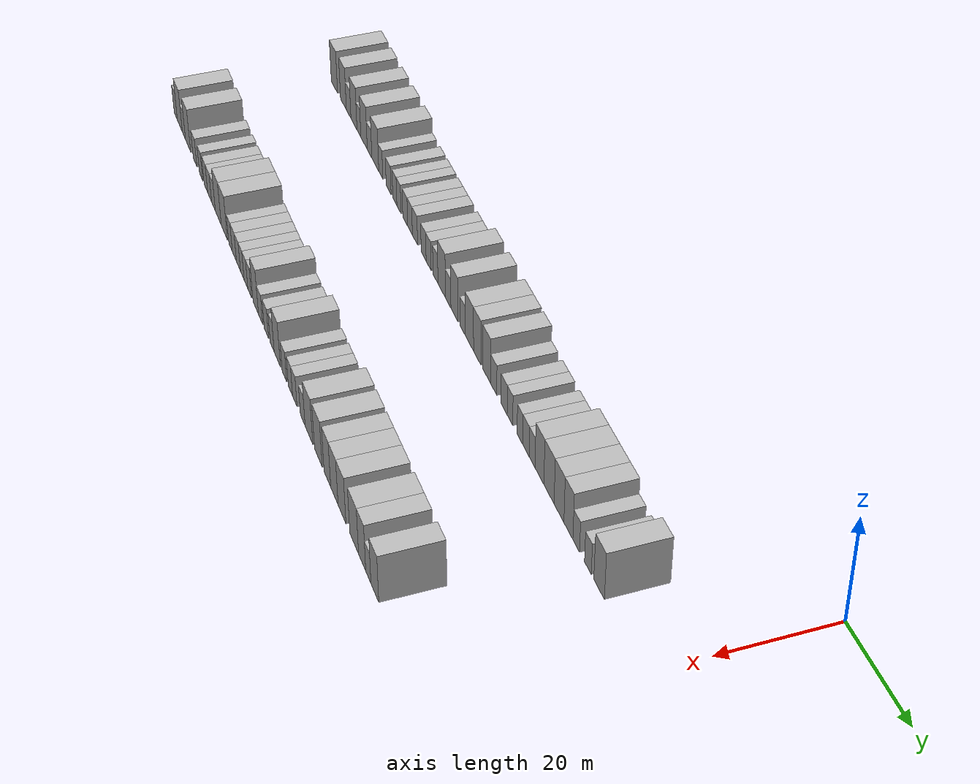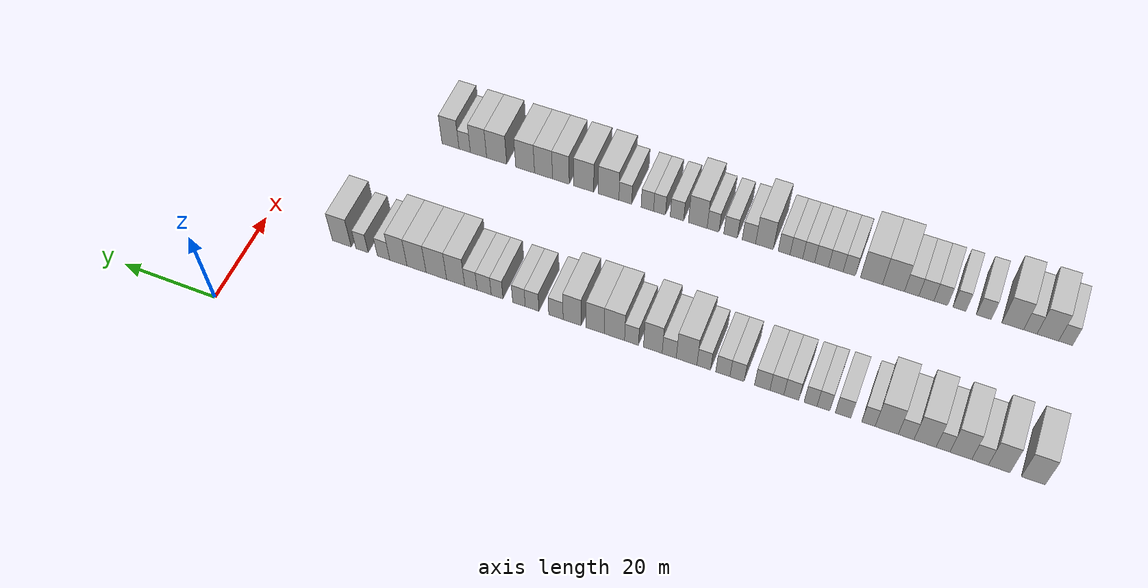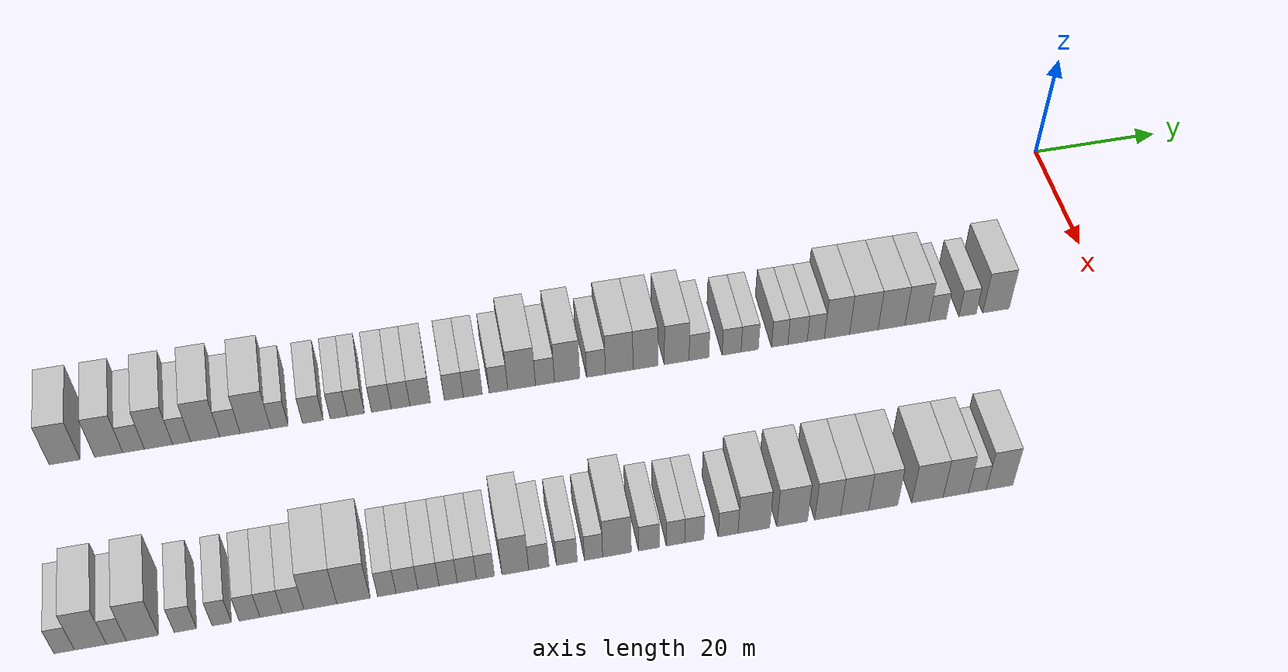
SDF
<sdf version="1.6">
 <world name="default">
  <model name="building_69">
   <static>1</static>
   <pose>25.0000 -152.9982 0 0.000000 0.000000 0.000000</pose>
   <link name="link">
    <pose>0 0 4.50 0 0 0</pose>
    <collision name="collision"><geometry><box><size>10.0000 4.2439 9.0000</size></box></geometry></collision>
    <visual name="visual">
     <cast_shadows>0</cast_shadows>
     <geometry><box><size>10.0000 4.2439 9.0000</size></box></geometry>
     <material>
      <script>
       <uri>model://HANNAS_wall/materials/scripts</uri>
       <uri>model://HANNAS_wall/materials/textures</uri>
       <name>vrc/HANNAS_wall</name>
      </script>
     </material>
    </visual>
   </link>
  </model>
  <model name="building_70">
   <static>1</static>
   <pose>25.0000 -146.9406 0 0.000000 0.000000 0.000000</pose>
   <link name="link">
    <pose>0 0 4.50 0 0 0</pose>
    <collision name="collision"><geometry><box><size>10.0000 3.8713 9.0000</size></box></geometry></collision>
    <visual name="visual">
     <cast_shadows>0</cast_shadows>
     <geometry><box><size>10.0000 3.8713 9.0000</size></box></geometry>
     <material>
      <script>
       <uri>model://HANNAS_wall/materials/scripts</uri>
       <uri>model://HANNAS_wall/materials/textures</uri>
       <name>vrc/HANNAS_wall</name>
      </script>
     </material>
    </visual>
   </link>
  </model>
  <model name="building_71">
   <static>1</static>
   <pose>25.0000 -143.5120 0 0.000000 0.000000 0.000000</pose>
   <link name="link">
    <pose>0 0 3.00 0 0 0</pose>
    <collision name="collision"><geometry><box><size>10.0000 2.9858 6.0000</size></box></geometry></collision>
    <visual name="visual">
     <cast_shadows>0</cast_shadows>
     <geometry><box><size>10.0000 2.9858 6.0000</size></box></geometry>
     <material>
      <script>
       <uri>model://HANNAS_wall/materials/scripts</uri>
       <uri>model://HANNAS_wall/materials/textures</uri>
       <name>vrc/HANNAS_wall</name>
      </script>
     </material>
    </visual>
   </link>
  </model>
  <model name="building_72">
   <static>1</static>
   <pose>25.0000 -140.0591 0 0.000000 0.000000 0.000000</pose>
   <link name="link">
    <pose>0 0 4.50 0 0 0</pose>
    <collision name="collision"><geometry><box><size>10.0000 3.9200 9.0000</size></box></geometry></collision>
    <visual name="visual">
     <cast_shadows>0</cast_shadows>
     <geometry><box><size>10.0000 3.9200 9.0000</size></box></geometry>
     <material>
      <script>
       <uri>model://HANNAS_wall/materials/scripts</uri>
       <uri>model://HANNAS_wall/materials/textures</uri>
       <name>vrc/HANNAS_wall</name>
      </script>
     </material>
    </visual>
   </link>
  </model>
  <model name="building_73">
   <static>1</static>
   <pose>25.0000 -136.8390 0 0.000000 0.000000 0.000000</pose>
   <link name="link">
    <pose>0 0 3.00 0 0 0</pose>
    <collision name="collision"><geometry><box><size>10.0000 2.5201 6.0000</size></box></geometry></collision>
    <visual name="visual">
     <cast_shadows>0</cast_shadows>
     <geometry><box><size>10.0000 2.5201 6.0000</size></box></geometry>
     <material>
      <script>
       <uri>model://HANNAS_wall/materials/scripts</uri>
       <uri>model://HANNAS_wall/materials/textures</uri>
       <name>vrc/HANNAS_wall</name>
      </script>
     </material>
    </visual>
   </link>
  </model>
  <model name="building_74">
   <static>1</static>
   <pose>25.0000 -133.5613 0 0.000000 0.000000 0.000000</pose>
   <link name="link">
    <pose>0 0 4.50 0 0 0</pose>
    <collision name="collision"><geometry><box><size>10.0000 4.0353 9.0000</size></box></geometry></collision>
    <visual name="visual">
     <cast_shadows>0</cast_shadows>
     <geometry><box><size>10.0000 4.0353 9.0000</size></box></geometry>
     <material>
      <script>
       <uri>model://HANNAS_wall/materials/scripts</uri>
       <uri>model://HANNAS_wall/materials/textures</uri>
       <name>vrc/HANNAS_wall</name>
      </script>
     </material>
    </visual>
   </link>
  </model>
  <model name="building_75">
   <static>1</static>
   <pose>25.0000 -130.1023 0 0.000000 0.000000 0.000000</pose>
   <link name="link">
    <pose>0 0 3.00 0 0 0</pose>
    <collision name="collision"><geometry><box><size>10.0000 2.8826 6.0000</size></box></geometry></collision>
    <visual name="visual">
     <cast_shadows>0</cast_shadows>
     <geometry><box><size>10.0000 2.8826 6.0000</size></box></geometry>
     <material>
      <script>
       <uri>model://HANNAS_wall/materials/scripts</uri>
       <uri>model://HANNAS_wall/materials/textures</uri>
       <name>vrc/HANNAS_wall</name>
      </script>
     </material>
    </visual>
   </link>
  </model>
  <model name="building_76">
   <static>1</static>
   <pose>25.0000 -126.5251 0 0.000000 0.000000 0.000000</pose>
   <link name="link">
    <pose>0 0 4.50 0 0 0</pose>
    <collision name="collision"><geometry><box><size>10.0000 4.2718 9.0000</size></box></geometry></collision>
    <visual name="visual">
     <cast_shadows>0</cast_shadows>
     <geometry><box><size>10.0000 4.2718 9.0000</size></box></geometry>
     <material>
      <script>
       <uri>model://HANNAS_wall/materials/scripts</uri>
       <uri>model://HANNAS_wall/materials/textures</uri>
       <name>vrc/HANNAS_wall</name>
      </script>
     </material>
    </visual>
   </link>
  </model>
  <model name="building_77">
   <static>1</static>
   <pose>25.0000 -123.1463 0 0.000000 0.000000 0.000000</pose>
   <link name="link">
    <pose>0 0 3.00 0 0 0</pose>
    <collision name="collision"><geometry><box><size>10.0000 2.4859 6.0000</size></box></geometry></collision>
    <visual name="visual">
     <cast_shadows>0</cast_shadows>
     <geometry><box><size>10.0000 2.4859 6.0000</size></box></geometry>
     <material>
      <script>
       <uri>model://HANNAS_wall/materials/scripts</uri>
       <uri>model://HANNAS_wall/materials/textures</uri>
       <name>vrc/HANNAS_wall</name>
      </script>
     </material>
    </visual>
   </link>
  </model>
  <model name="building_78">
   <static>1</static>
   <pose>25.0000 -118.4275 0 0.000000 0.000000 0.000000</pose>
   <link name="link">
    <pose>0 0 3.00 0 0 0</pose>
    <collision name="collision"><geometry><box><size>10.0000 2.9517 6.0000</size></box></geometry></collision>
    <visual name="visual">
     <cast_shadows>0</cast_shadows>
     <geometry><box><size>10.0000 2.9517 6.0000</size></box></geometry>
     <material>
      <script>
       <uri>model://HANNAS_wall/materials/scripts</uri>
       <uri>model://HANNAS_wall/materials/textures</uri>
       <name>vrc/HANNAS_wall</name>
      </script>
     </material>
    </visual>
   </link>
  </model>
  <model name="building_79">
   <static>1</static>
   <pose>25.0000 -114.7393 0 0.000000 0.000000 0.000000</pose>
   <link name="link">
    <pose>0 0 3.00 0 0 0</pose>
    <collision name="collision"><geometry><box><size>10.0000 2.4248 6.0000</size></box></geometry></collision>
    <visual name="visual">
     <cast_shadows>0</cast_shadows>
     <geometry><box><size>10.0000 2.4248 6.0000</size></box></geometry>
     <material>
      <script>
       <uri>model://HANNAS_wall/materials/scripts</uri>
       <uri>model://HANNAS_wall/materials/textures</uri>
       <name>vrc/HANNAS_wall</name>
      </script>
     </material>
    </visual>
   </link>
  </model>
  <model name="building_80">
   <static>1</static>
   <pose>25.0000 -112.3046 0 0.000000 0.000000 0.000000</pose>
   <link name="link">
    <pose>0 0 3.00 0 0 0</pose>
    <collision name="collision"><geometry><box><size>10.0000 2.4445 6.0000</size></box></geometry></collision>
    <visual name="visual">
     <cast_shadows>0</cast_shadows>
     <geometry><box><size>10.0000 2.4445 6.0000</size></box></geometry>
     <material>
      <script>
       <uri>model://HANNAS_wall/materials/scripts</uri>
       <uri>model://HANNAS_wall/materials/textures</uri>
       <name>vrc/HANNAS_wall</name>
      </script>
     </material>
    </visual>
   </link>
  </model>
  <model name="building_81">
   <static>1</static>
   <pose>25.0000 -108.6654 0 0.000000 0.000000 0.000000</pose>
   <link name="link">
    <pose>0 0 3.00 0 0 0</pose>
    <collision name="collision"><geometry><box><size>10.0000 2.8339 6.0000</size></box></geometry></collision>
    <visual name="visual">
     <cast_shadows>0</cast_shadows>
     <geometry><box><size>10.0000 2.8339 6.0000</size></box></geometry>
     <material>
      <script>
       <uri>model://HANNAS_wall/materials/scripts</uri>
       <uri>model://HANNAS_wall/materials/textures</uri>
       <name>vrc/HANNAS_wall</name>
      </script>
     </material>
    </visual>
   </link>
  </model>
  <model name="building_82">
   <static>1</static>
   <pose>25.0000 -105.9161 0 0.000000 0.000000 0.000000</pose>
   <link name="link">
    <pose>0 0 3.00 0 0 0</pose>
    <collision name="collision"><geometry><box><size>10.0000 2.6646 6.0000</size></box></geometry></collision>
    <visual name="visual">
     <cast_shadows>0</cast_shadows>
     <geometry><box><size>10.0000 2.6646 6.0000</size></box></geometry>
     <material>
      <script>
       <uri>model://HANNAS_wall/materials/scripts</uri>
       <uri>model://HANNAS_wall/materials/textures</uri>
       <name>vrc/HANNAS_wall</name>
      </script>
     </material>
    </visual>
   </link>
  </model>
  <model name="building_83">
   <static>1</static>
   <pose>25.0000 -103.1079 0 0.000000 0.000000 0.000000</pose>
   <link name="link">
    <pose>0 0 3.00 0 0 0</pose>
    <collision name="collision"><geometry><box><size>10.0000 2.9518 6.0000</size></box></geometry></collision>
    <visual name="visual">
     <cast_shadows>0</cast_shadows>
     <geometry><box><size>10.0000 2.9518 6.0000</size></box></geometry>
     <material>
      <script>
       <uri>model://HANNAS_wall/materials/scripts</uri>
       <uri>model://HANNAS_wall/materials/textures</uri>
       <name>vrc/HANNAS_wall</name>
      </script>
     </material>
    </visual>
   </link>
  </model>
  <model name="building_84">
   <static>1</static>
   <pose>25.0000 -98.2586 0 0.000000 0.000000 0.000000</pose>
   <link name="link">
    <pose>0 0 3.00 0 0 0</pose>
    <collision name="collision"><geometry><box><size>10.0000 2.7467 6.0000</size></box></geometry></collision>
    <visual name="visual">
     <cast_shadows>0</cast_shadows>
     <geometry><box><size>10.0000 2.7467 6.0000</size></box></geometry>
     <material>
      <script>
       <uri>model://HANNAS_wall/materials/scripts</uri>
       <uri>model://HANNAS_wall/materials/textures</uri>
       <name>vrc/HANNAS_wall</name>
      </script>
     </material>
    </visual>
   </link>
  </model>
  <model name="building_85">
   <static>1</static>
   <pose>25.0000 -95.5077 0 0.000000 0.000000 0.000000</pose>
   <link name="link">
    <pose>0 0 3.00 0 0 0</pose>
    <collision name="collision"><geometry><box><size>10.0000 2.7551 6.0000</size></box></geometry></collision>
    <visual name="visual">
     <cast_shadows>0</cast_shadows>
     <geometry><box><size>10.0000 2.7551 6.0000</size></box></geometry>
     <material>
      <script>
       <uri>model://HANNAS_wall/materials/scripts</uri>
       <uri>model://HANNAS_wall/materials/textures</uri>
       <name>vrc/HANNAS_wall</name>
      </script>
     </material>
    </visual>
   </link>
  </model>
  <model name="building_86">
   <static>1</static>
   <pose>25.0000 -91.7894 0 0.000000 0.000000 0.000000</pose>
   <link name="link">
    <pose>0 0 3.00 0 0 0</pose>
    <collision name="collision"><geometry><box><size>10.0000 2.6816 6.0000</size></box></geometry></collision>
    <visual name="visual">
     <cast_shadows>0</cast_shadows>
     <geometry><box><size>10.0000 2.6816 6.0000</size></box></geometry>
     <material>
      <script>
       <uri>model://HANNAS_wall/materials/scripts</uri>
       <uri>model://HANNAS_wall/materials/textures</uri>
       <name>vrc/HANNAS_wall</name>
      </script>
     </material>
    </visual>
   </link>
  </model>
  <model name="building_87">
   <static>1</static>
   <pose>25.0000 -88.4211 0 0.000000 0.000000 0.000000</pose>
   <link name="link">
    <pose>0 0 4.50 0 0 0</pose>
    <collision name="collision"><geometry><box><size>10.0000 4.0550 9.0000</size></box></geometry></collision>
    <visual name="visual">
     <cast_shadows>0</cast_shadows>
     <geometry><box><size>10.0000 4.0550 9.0000</size></box></geometry>
     <material>
      <script>
       <uri>model://HANNAS_wall/materials/scripts</uri>
       <uri>model://HANNAS_wall/materials/textures</uri>
       <name>vrc/HANNAS_wall</name>
      </script>
     </material>
    </visual>
   </link>
  </model>
  <model name="building_88">
   <static>1</static>
   <pose>25.0000 -85.0019 0 0.000000 0.000000 0.000000</pose>
   <link name="link">
    <pose>0 0 3.00 0 0 0</pose>
    <collision name="collision"><geometry><box><size>10.0000 2.7835 6.0000</size></box></geometry></collision>
    <visual name="visual">
     <cast_shadows>0</cast_shadows>
     <geometry><box><size>10.0000 2.7835 6.0000</size></box></geometry>
     <material>
      <script>
       <uri>model://HANNAS_wall/materials/scripts</uri>
       <uri>model://HANNAS_wall/materials/textures</uri>
       <name>vrc/HANNAS_wall</name>
      </script>
     </material>
    </visual>
   </link>
  </model>
  <model name="building_89">
   <static>1</static>
   <pose>25.0000 -81.7576 0 0.000000 0.000000 0.000000</pose>
   <link name="link">
    <pose>0 0 4.50 0 0 0</pose>
    <collision name="collision"><geometry><box><size>10.0000 3.7051 9.0000</size></box></geometry></collision>
    <visual name="visual">
     <cast_shadows>0</cast_shadows>
     <geometry><box><size>10.0000 3.7051 9.0000</size></box></geometry>
     <material>
      <script>
       <uri>model://HANNAS_wall/materials/scripts</uri>
       <uri>model://HANNAS_wall/materials/textures</uri>
       <name>vrc/HANNAS_wall</name>
      </script>
     </material>
    </visual>
   </link>
  </model>
  <model name="building_90">
   <static>1</static>
   <pose>25.0000 -77.5174 0 0.000000 0.000000 0.000000</pose>
   <link name="link">
    <pose>0 0 3.00 0 0 0</pose>
    <collision name="collision"><geometry><box><size>10.0000 2.7752 6.0000</size></box></geometry></collision>
    <visual name="visual">
     <cast_shadows>0</cast_shadows>
     <geometry><box><size>10.0000 2.7752 6.0000</size></box></geometry>
     <material>
      <script>
       <uri>model://HANNAS_wall/materials/scripts</uri>
       <uri>model://HANNAS_wall/materials/textures</uri>
       <name>vrc/HANNAS_wall</name>
      </script>
     </material>
    </visual>
   </link>
  </model>
  <model name="building_91">
   <static>1</static>
   <pose>25.0000 -74.0889 0 0.000000 0.000000 0.000000</pose>
   <link name="link">
    <pose>0 0 4.50 0 0 0</pose>
    <collision name="collision"><geometry><box><size>10.0000 4.0818 9.0000</size></box></geometry></collision>
    <visual name="visual">
     <cast_shadows>0</cast_shadows>
     <geometry><box><size>10.0000 4.0818 9.0000</size></box></geometry>
     <material>
      <script>
       <uri>model://HANNAS_wall/materials/scripts</uri>
       <uri>model://HANNAS_wall/materials/textures</uri>
       <name>vrc/HANNAS_wall</name>
      </script>
     </material>
    </visual>
   </link>
  </model>
  <model name="building_92">
   <static>1</static>
   <pose>25.0000 -70.2251 0 0.000000 0.000000 0.000000</pose>
   <link name="link">
    <pose>0 0 4.50 0 0 0</pose>
    <collision name="collision"><geometry><box><size>10.0000 3.6458 9.0000</size></box></geometry></collision>
    <visual name="visual">
     <cast_shadows>0</cast_shadows>
     <geometry><box><size>10.0000 3.6458 9.0000</size></box></geometry>
     <material>
      <script>
       <uri>model://HANNAS_wall/materials/scripts</uri>
       <uri>model://HANNAS_wall/materials/textures</uri>
       <name>vrc/HANNAS_wall</name>
      </script>
     </material>
    </visual>
   </link>
  </model>
  <model name="building_93">
   <static>1</static>
   <pose>25.0000 -65.5597 0 0.000000 0.000000 0.000000</pose>
   <link name="link">
    <pose>0 0 4.50 0 0 0</pose>
    <collision name="collision"><geometry><box><size>10.0000 3.6851 9.0000</size></box></geometry></collision>
    <visual name="visual">
     <cast_shadows>0</cast_shadows>
     <geometry><box><size>10.0000 3.6851 9.0000</size></box></geometry>
     <material>
      <script>
       <uri>model://HANNAS_wall/materials/scripts</uri>
       <uri>model://HANNAS_wall/materials/textures</uri>
       <name>vrc/HANNAS_wall</name>
      </script>
     </material>
    </visual>
   </link>
  </model>
  <model name="building_94">
   <static>1</static>
   <pose>25.0000 -62.2374 0 0.000000 0.000000 0.000000</pose>
   <link name="link">
    <pose>0 0 3.00 0 0 0</pose>
    <collision name="collision"><geometry><box><size>10.0000 2.9595 6.0000</size></box></geometry></collision>
    <visual name="visual">
     <cast_shadows>0</cast_shadows>
     <geometry><box><size>10.0000 2.9595 6.0000</size></box></geometry>
     <material>
      <script>
       <uri>model://HANNAS_wall/materials/scripts</uri>
       <uri>model://HANNAS_wall/materials/textures</uri>
       <name>vrc/HANNAS_wall</name>
      </script>
     </material>
    </visual>
   </link>
  </model>
  <model name="building_95">
   <static>1</static>
   <pose>25.0000 -57.3378 0 0.000000 0.000000 0.000000</pose>
   <link name="link">
    <pose>0 0 3.00 0 0 0</pose>
    <collision name="collision"><geometry><box><size>10.0000 2.8397 6.0000</size></box></geometry></collision>
    <visual name="visual">
     <cast_shadows>0</cast_shadows>
     <geometry><box><size>10.0000 2.8397 6.0000</size></box></geometry>
     <material>
      <script>
       <uri>model://HANNAS_wall/materials/scripts</uri>
       <uri>model://HANNAS_wall/materials/textures</uri>
       <name>vrc/HANNAS_wall</name>
      </script>
     </material>
    </visual>
   </link>
  </model>
  <model name="building_96">
   <static>1</static>
   <pose>25.0000 -54.6147 0 0.000000 0.000000 0.000000</pose>
   <link name="link">
    <pose>0 0 3.00 0 0 0</pose>
    <collision name="collision"><geometry><box><size>10.0000 2.6063 6.0000</size></box></geometry></collision>
    <visual name="visual">
     <cast_shadows>0</cast_shadows>
     <geometry><box><size>10.0000 2.6063 6.0000</size></box></geometry>
     <material>
      <script>
       <uri>model://HANNAS_wall/materials/scripts</uri>
       <uri>model://HANNAS_wall/materials/textures</uri>
       <name>vrc/HANNAS_wall</name>
      </script>
     </material>
    </visual>
   </link>
  </model>
  <model name="building_97">
   <static>1</static>
   <pose>25.0000 -50.0798 0 0.000000 0.000000 0.000000</pose>
   <link name="link">
    <pose>0 0 3.00 0 0 0</pose>
    <collision name="collision"><geometry><box><size>10.0000 2.4636 6.0000</size></box></geometry></collision>
    <visual name="visual">
     <cast_shadows>0</cast_shadows>
     <geometry><box><size>10.0000 2.4636 6.0000</size></box></geometry>
     <material>
      <script>
       <uri>model://HANNAS_wall/materials/scripts</uri>
       <uri>model://HANNAS_wall/materials/textures</uri>
       <name>vrc/HANNAS_wall</name>
      </script>
     </material>
    </visual>
   </link>
  </model>
  <model name="building_98">
   <static>1</static>
   <pose>25.0000 -47.3747 0 0.000000 0.000000 0.000000</pose>
   <link name="link">
    <pose>0 0 3.00 0 0 0</pose>
    <collision name="collision"><geometry><box><size>10.0000 2.9465 6.0000</size></box></geometry></collision>
    <visual name="visual">
     <cast_shadows>0</cast_shadows>
     <geometry><box><size>10.0000 2.9465 6.0000</size></box></geometry>
     <material>
      <script>
       <uri>model://HANNAS_wall/materials/scripts</uri>
       <uri>model://HANNAS_wall/materials/textures</uri>
       <name>vrc/HANNAS_wall</name>
      </script>
     </material>
    </visual>
   </link>
  </model>
  <model name="building_99">
   <static>1</static>
   <pose>25.0000 -44.5934 0 0.000000 0.000000 0.000000</pose>
   <link name="link">
    <pose>0 0 3.00 0 0 0</pose>
    <collision name="collision"><geometry><box><size>10.0000 2.6161 6.0000</size></box></geometry></collision>
    <visual name="visual">
     <cast_shadows>0</cast_shadows>
     <geometry><box><size>10.0000 2.6161 6.0000</size></box></geometry>
     <material>
      <script>
       <uri>model://HANNAS_wall/materials/scripts</uri>
       <uri>model://HANNAS_wall/materials/textures</uri>
       <name>vrc/HANNAS_wall</name>
      </script>
     </material>
    </visual>
   </link>
  </model>
  <model name="building_100">
   <static>1</static>
   <pose>25.0000 -41.3669 0 0.000000 0.000000 0.000000</pose>
   <link name="link">
    <pose>0 0 4.50 0 0 0</pose>
    <collision name="collision"><geometry><box><size>10.0000 3.8368 9.0000</size></box></geometry></collision>
    <visual name="visual">
     <cast_shadows>0</cast_shadows>
     <geometry><box><size>10.0000 3.8368 9.0000</size></box></geometry>
     <material>
      <script>
       <uri>model://HANNAS_wall/materials/scripts</uri>
       <uri>model://HANNAS_wall/materials/textures</uri>
       <name>vrc/HANNAS_wall</name>
      </script>
     </material>
    </visual>
   </link>
  </model>
  <model name="building_101">
   <static>1</static>
   <pose>25.0000 -37.2629 0 0.000000 0.000000 0.000000</pose>
   <link name="link">
    <pose>0 0 4.50 0 0 0</pose>
    <collision name="collision"><geometry><box><size>10.0000 4.3713 9.0000</size></box></geometry></collision>
    <visual name="visual">
     <cast_shadows>0</cast_shadows>
     <geometry><box><size>10.0000 4.3713 9.0000</size></box></geometry>
     <material>
      <script>
       <uri>model://HANNAS_wall/materials/scripts</uri>
       <uri>model://HANNAS_wall/materials/textures</uri>
       <name>vrc/HANNAS_wall</name>
      </script>
     </material>
    </visual>
   </link>
  </model>
  <model name="building_102">
   <static>1</static>
   <pose>25.0000 -33.0219 0 0.000000 0.000000 0.000000</pose>
   <link name="link">
    <pose>0 0 4.50 0 0 0</pose>
    <collision name="collision"><geometry><box><size>10.0000 4.1106 9.0000</size></box></geometry></collision>
    <visual name="visual">
     <cast_shadows>0</cast_shadows>
     <geometry><box><size>10.0000 4.1106 9.0000</size></box></geometry>
     <material>
      <script>
       <uri>model://HANNAS_wall/materials/scripts</uri>
       <uri>model://HANNAS_wall/materials/textures</uri>
       <name>vrc/HANNAS_wall</name>
      </script>
     </material>
    </visual>
   </link>
  </model>
  <model name="building_103">
   <static>1</static>
   <pose>25.0000 -29.1130 0 0.000000 0.000000 0.000000</pose>
   <link name="link">
    <pose>0 0 4.50 0 0 0</pose>
    <collision name="collision"><geometry><box><size>10.0000 3.7072 9.0000</size></box></geometry></collision>
    <visual name="visual">
     <cast_shadows>0</cast_shadows>
     <geometry><box><size>10.0000 3.7072 9.0000</size></box></geometry>
     <material>
      <script>
       <uri>model://HANNAS_wall/materials/scripts</uri>
       <uri>model://HANNAS_wall/materials/textures</uri>
       <name>vrc/HANNAS_wall</name>
      </script>
     </material>
    </visual>
   </link>
  </model>
  <model name="building_104">
   <static>1</static>
   <pose>25.0000 -25.9111 0 0.000000 0.000000 0.000000</pose>
   <link name="link">
    <pose>0 0 3.00 0 0 0</pose>
    <collision name="collision"><geometry><box><size>10.0000 2.6966 6.0000</size></box></geometry></collision>
    <visual name="visual">
     <cast_shadows>0</cast_shadows>
     <geometry><box><size>10.0000 2.6966 6.0000</size></box></geometry>
     <material>
      <script>
       <uri>model://HANNAS_wall/materials/scripts</uri>
       <uri>model://HANNAS_wall/materials/textures</uri>
       <name>vrc/HANNAS_wall</name>
      </script>
     </material>
    </visual>
   </link>
  </model>
  <model name="building_105">
   <static>1</static>
   <pose>25.0000 -21.2219 0 0.000000 0.000000 0.000000</pose>
   <link name="link">
    <pose>0 0 3.00 0 0 0</pose>
    <collision name="collision"><geometry><box><size>10.0000 2.6818 6.0000</size></box></geometry></collision>
    <visual name="visual">
     <cast_shadows>0</cast_shadows>
     <geometry><box><size>10.0000 2.6818 6.0000</size></box></geometry>
     <material>
      <script>
       <uri>model://HANNAS_wall/materials/scripts</uri>
       <uri>model://HANNAS_wall/materials/textures</uri>
       <name>vrc/HANNAS_wall</name>
      </script>
     </material>
    </visual>
   </link>
  </model>
  <model name="building_106">
   <static>1</static>
   <pose>25.0000 -16.8130 0 0.000000 0.000000 0.000000</pose>
   <link name="link">
    <pose>0 0 4.50 0 0 0</pose>
    <collision name="collision"><geometry><box><size>10.0000 4.1360 9.0000</size></box></geometry></collision>
    <visual name="visual">
     <cast_shadows>0</cast_shadows>
     <geometry><box><size>10.0000 4.1360 9.0000</size></box></geometry>
     <material>
      <script>
       <uri>model://HANNAS_wall/materials/scripts</uri>
       <uri>model://HANNAS_wall/materials/textures</uri>
       <name>vrc/HANNAS_wall</name>
      </script>
     </material>
    </visual>
   </link>
  </model>
  <model name="building_299">
   <static>1</static>
   <pose>55.0000 -152.9366 0 0.000000 0.000000 0.000000</pose>
   <link name="link">
    <pose>0 0 3.00 0 0 0</pose>
    <collision name="collision"><geometry><box><size>10.0000 2.6044 6.0000</size></box></geometry></collision>
    <visual name="visual">
     <cast_shadows>0</cast_shadows>
     <geometry><box><size>10.0000 2.6044 6.0000</size></box></geometry>
     <material>
      <script>
       <uri>model://HANNAS_wall/materials/scripts</uri>
       <uri>model://HANNAS_wall/materials/textures</uri>
       <name>vrc/HANNAS_wall</name>
      </script>
     </material>
    </visual>
   </link>
  </model>
  <model name="building_300">
   <static>1</static>
   <pose>55.0000 -149.6000 0 0.000000 0.000000 0.000000</pose>
   <link name="link">
    <pose>0 0 4.50 0 0 0</pose>
    <collision name="collision"><geometry><box><size>10.0000 4.0689 9.0000</size></box></geometry></collision>
    <visual name="visual">
     <cast_shadows>0</cast_shadows>
     <geometry><box><size>10.0000 4.0689 9.0000</size></box></geometry>
     <material>
      <script>
       <uri>model://HANNAS_wall/materials/scripts</uri>
       <uri>model://HANNAS_wall/materials/textures</uri>
       <name>vrc/HANNAS_wall</name>
      </script>
     </material>
    </visual>
   </link>
  </model>
  <model name="building_301">
   <static>1</static>
   <pose>55.0000 -146.2995 0 0.000000 0.000000 0.000000</pose>
   <link name="link">
    <pose>0 0 3.00 0 0 0</pose>
    <collision name="collision"><geometry><box><size>10.0000 2.5321 6.0000</size></box></geometry></collision>
    <visual name="visual">
     <cast_shadows>0</cast_shadows>
     <geometry><box><size>10.0000 2.5321 6.0000</size></box></geometry>
     <material>
      <script>
       <uri>model://HANNAS_wall/materials/scripts</uri>
       <uri>model://HANNAS_wall/materials/textures</uri>
       <name>vrc/HANNAS_wall</name>
      </script>
     </material>
    </visual>
   </link>
  </model>
  <model name="building_302">
   <static>1</static>
   <pose>55.0000 -142.9694 0 0.000000 0.000000 0.000000</pose>
   <link name="link">
    <pose>0 0 4.50 0 0 0</pose>
    <collision name="collision"><geometry><box><size>10.0000 4.1283 9.0000</size></box></geometry></collision>
    <visual name="visual">
     <cast_shadows>0</cast_shadows>
     <geometry><box><size>10.0000 4.1283 9.0000</size></box></geometry>
     <material>
      <script>
       <uri>model://HANNAS_wall/materials/scripts</uri>
       <uri>model://HANNAS_wall/materials/textures</uri>
       <name>vrc/HANNAS_wall</name>
      </script>
     </material>
    </visual>
   </link>
  </model>
  <model name="building_303">
   <static>1</static>
   <pose>55.0000 -137.4637 0 0.000000 0.000000 0.000000</pose>
   <link name="link">
    <pose>0 0 3.00 0 0 0</pose>
    <collision name="collision"><geometry><box><size>10.0000 2.8830 6.0000</size></box></geometry></collision>
    <visual name="visual">
     <cast_shadows>0</cast_shadows>
     <geometry><box><size>10.0000 2.8830 6.0000</size></box></geometry>
     <material>
      <script>
       <uri>model://HANNAS_wall/materials/scripts</uri>
       <uri>model://HANNAS_wall/materials/textures</uri>
       <name>vrc/HANNAS_wall</name>
      </script>
     </material>
    </visual>
   </link>
  </model>
  <model name="building_304">
   <static>1</static>
   <pose>55.0000 -132.7652 0 0.000000 0.000000 0.000000</pose>
   <link name="link">
    <pose>0 0 3.00 0 0 0</pose>
    <collision name="collision"><geometry><box><size>10.0000 2.5139 6.0000</size></box></geometry></collision>
    <visual name="visual">
     <cast_shadows>0</cast_shadows>
     <geometry><box><size>10.0000 2.5139 6.0000</size></box></geometry>
     <material>
      <script>
       <uri>model://HANNAS_wall/materials/scripts</uri>
       <uri>model://HANNAS_wall/materials/textures</uri>
       <name>vrc/HANNAS_wall</name>
      </script>
     </material>
    </visual>
   </link>
  </model>
  <model name="building_305">
   <static>1</static>
   <pose>55.0000 -129.1557 0 0.000000 0.000000 0.000000</pose>
   <link name="link">
    <pose>0 0 3.00 0 0 0</pose>
    <collision name="collision"><geometry><box><size>10.0000 2.7051 6.0000</size></box></geometry></collision>
    <visual name="visual">
     <cast_shadows>0</cast_shadows>
     <geometry><box><size>10.0000 2.7051 6.0000</size></box></geometry>
     <material>
      <script>
       <uri>model://HANNAS_wall/materials/scripts</uri>
       <uri>model://HANNAS_wall/materials/textures</uri>
       <name>vrc/HANNAS_wall</name>
      </script>
     </material>
    </visual>
   </link>
  </model>
  <model name="building_306">
   <static>1</static>
   <pose>55.0000 -126.3455 0 0.000000 0.000000 0.000000</pose>
   <link name="link">
    <pose>0 0 3.00 0 0 0</pose>
    <collision name="collision"><geometry><box><size>10.0000 2.9153 6.0000</size></box></geometry></collision>
    <visual name="visual">
     <cast_shadows>0</cast_shadows>
     <geometry><box><size>10.0000 2.9153 6.0000</size></box></geometry>
     <material>
      <script>
       <uri>model://HANNAS_wall/materials/scripts</uri>
       <uri>model://HANNAS_wall/materials/textures</uri>
       <name>vrc/HANNAS_wall</name>
      </script>
     </material>
    </visual>
   </link>
  </model>
  <model name="building_307">
   <static>1</static>
   <pose>55.0000 -123.4725 0 0.000000 0.000000 0.000000</pose>
   <link name="link">
    <pose>0 0 3.00 0 0 0</pose>
    <collision name="collision"><geometry><box><size>10.0000 2.8307 6.0000</size></box></geometry></collision>
    <visual name="visual">
     <cast_shadows>0</cast_shadows>
     <geometry><box><size>10.0000 2.8307 6.0000</size></box></geometry>
     <material>
      <script>
       <uri>model://HANNAS_wall/materials/scripts</uri>
       <uri>model://HANNAS_wall/materials/textures</uri>
       <name>vrc/HANNAS_wall</name>
      </script>
     </material>
    </visual>
   </link>
  </model>
  <model name="building_308">
   <static>1</static>
   <pose>55.0000 -119.9037 0 0.000000 0.000000 0.000000</pose>
   <link name="link">
    <pose>0 0 4.50 0 0 0</pose>
    <collision name="collision"><geometry><box><size>10.0000 4.3069 9.0000</size></box></geometry></collision>
    <visual name="visual">
     <cast_shadows>0</cast_shadows>
     <geometry><box><size>10.0000 4.3069 9.0000</size></box></geometry>
     <material>
      <script>
       <uri>model://HANNAS_wall/materials/scripts</uri>
       <uri>model://HANNAS_wall/materials/textures</uri>
       <name>vrc/HANNAS_wall</name>
      </script>
     </material>
    </visual>
   </link>
  </model>
  <model name="building_309">
   <static>1</static>
   <pose>55.0000 -115.5539 0 0.000000 0.000000 0.000000</pose>
   <link name="link">
    <pose>0 0 4.50 0 0 0</pose>
    <collision name="collision"><geometry><box><size>10.0000 4.3927 9.0000</size></box></geometry></collision>
    <visual name="visual">
     <cast_shadows>0</cast_shadows>
     <geometry><box><size>10.0000 4.3927 9.0000</size></box></geometry>
     <material>
      <script>
       <uri>model://HANNAS_wall/materials/scripts</uri>
       <uri>model://HANNAS_wall/materials/textures</uri>
       <name>vrc/HANNAS_wall</name>
      </script>
     </material>
    </visual>
   </link>
  </model>
  <model name="building_310">
   <static>1</static>
   <pose>55.0000 -111.1332 0 0.000000 0.000000 0.000000</pose>
   <link name="link">
    <pose>0 0 3.00 0 0 0</pose>
    <collision name="collision"><geometry><box><size>10.0000 2.4486 6.0000</size></box></geometry></collision>
    <visual name="visual">
     <cast_shadows>0</cast_shadows>
     <geometry><box><size>10.0000 2.4486 6.0000</size></box></geometry>
     <material>
      <script>
       <uri>model://HANNAS_wall/materials/scripts</uri>
       <uri>model://HANNAS_wall/materials/textures</uri>
       <name>vrc/HANNAS_wall</name>
      </script>
     </material>
    </visual>
   </link>
  </model>
  <model name="building_311">
   <static>1</static>
   <pose>55.0000 -108.4474 0 0.000000 0.000000 0.000000</pose>
   <link name="link">
    <pose>0 0 3.00 0 0 0</pose>
    <collision name="collision"><geometry><box><size>10.0000 2.9230 6.0000</size></box></geometry></collision>
    <visual name="visual">
     <cast_shadows>0</cast_shadows>
     <geometry><box><size>10.0000 2.9230 6.0000</size></box></geometry>
     <material>
      <script>
       <uri>model://HANNAS_wall/materials/scripts</uri>
       <uri>model://HANNAS_wall/materials/textures</uri>
       <name>vrc/HANNAS_wall</name>
      </script>
     </material>
    </visual>
   </link>
  </model>
  <model name="building_312">
   <static>1</static>
   <pose>55.0000 -105.5894 0 0.000000 0.000000 0.000000</pose>
   <link name="link">
    <pose>0 0 3.00 0 0 0</pose>
    <collision name="collision"><geometry><box><size>10.0000 2.7931 6.0000</size></box></geometry></collision>
    <visual name="visual">
     <cast_shadows>0</cast_shadows>
     <geometry><box><size>10.0000 2.7931 6.0000</size></box></geometry>
     <material>
      <script>
       <uri>model://HANNAS_wall/materials/scripts</uri>
       <uri>model://HANNAS_wall/materials/textures</uri>
       <name>vrc/HANNAS_wall</name>
      </script>
     </material>
    </visual>
   </link>
  </model>
  <model name="building_313">
   <static>1</static>
   <pose>55.0000 -102.9759 0 0.000000 0.000000 0.000000</pose>
   <link name="link">
    <pose>0 0 3.00 0 0 0</pose>
    <collision name="collision"><geometry><box><size>10.0000 2.4340 6.0000</size></box></geometry></collision>
    <visual name="visual">
     <cast_shadows>0</cast_shadows>
     <geometry><box><size>10.0000 2.4340 6.0000</size></box></geometry>
     <material>
      <script>
       <uri>model://HANNAS_wall/materials/scripts</uri>
       <uri>model://HANNAS_wall/materials/textures</uri>
       <name>vrc/HANNAS_wall</name>
      </script>
     </material>
    </visual>
   </link>
  </model>
  <model name="building_314">
   <static>1</static>
   <pose>55.0000 -100.4777 0 0.000000 0.000000 0.000000</pose>
   <link name="link">
    <pose>0 0 3.00 0 0 0</pose>
    <collision name="collision"><geometry><box><size>10.0000 2.5625 6.0000</size></box></geometry></collision>
    <visual name="visual">
     <cast_shadows>0</cast_shadows>
     <geometry><box><size>10.0000 2.5625 6.0000</size></box></geometry>
     <material>
      <script>
       <uri>model://HANNAS_wall/materials/scripts</uri>
       <uri>model://HANNAS_wall/materials/textures</uri>
       <name>vrc/HANNAS_wall</name>
      </script>
     </material>
    </visual>
   </link>
  </model>
  <model name="building_315">
   <static>1</static>
   <pose>55.0000 -97.9821 0 0.000000 0.000000 0.000000</pose>
   <link name="link">
    <pose>0 0 3.00 0 0 0</pose>
    <collision name="collision"><geometry><box><size>10.0000 2.4286 6.0000</size></box></geometry></collision>
    <visual name="visual">
     <cast_shadows>0</cast_shadows>
     <geometry><box><size>10.0000 2.4286 6.0000</size></box></geometry>
     <material>
      <script>
       <uri>model://HANNAS_wall/materials/scripts</uri>
       <uri>model://HANNAS_wall/materials/textures</uri>
       <name>vrc/HANNAS_wall</name>
      </script>
     </material>
    </visual>
   </link>
  </model>
  <model name="building_316">
   <static>1</static>
   <pose>55.0000 -93.9638 0 0.000000 0.000000 0.000000</pose>
   <link name="link">
    <pose>0 0 4.50 0 0 0</pose>
    <collision name="collision"><geometry><box><size>10.0000 3.6079 9.0000</size></box></geometry></collision>
    <visual name="visual">
     <cast_shadows>0</cast_shadows>
     <geometry><box><size>10.0000 3.6079 9.0000</size></box></geometry>
     <material>
      <script>
       <uri>model://HANNAS_wall/materials/scripts</uri>
       <uri>model://HANNAS_wall/materials/textures</uri>
       <name>vrc/HANNAS_wall</name>
      </script>
     </material>
    </visual>
   </link>
  </model>
  <model name="building_317">
   <static>1</static>
   <pose>55.0000 -90.7795 0 0.000000 0.000000 0.000000</pose>
   <link name="link">
    <pose>0 0 3.00 0 0 0</pose>
    <collision name="collision"><geometry><box><size>10.0000 2.7607 6.0000</size></box></geometry></collision>
    <visual name="visual">
     <cast_shadows>0</cast_shadows>
     <geometry><box><size>10.0000 2.7607 6.0000</size></box></geometry>
     <material>
      <script>
       <uri>model://HANNAS_wall/materials/scripts</uri>
       <uri>model://HANNAS_wall/materials/textures</uri>
       <name>vrc/HANNAS_wall</name>
      </script>
     </material>
    </visual>
   </link>
  </model>
  <model name="building_318">
   <static>1</static>
   <pose>55.0000 -86.9905 0 0.000000 0.000000 0.000000</pose>
   <link name="link">
    <pose>0 0 3.00 0 0 0</pose>
    <collision name="collision"><geometry><box><size>10.0000 2.8172 6.0000</size></box></geometry></collision>
    <visual name="visual">
     <cast_shadows>0</cast_shadows>
     <geometry><box><size>10.0000 2.8172 6.0000</size></box></geometry>
     <material>
      <script>
       <uri>model://HANNAS_wall/materials/scripts</uri>
       <uri>model://HANNAS_wall/materials/textures</uri>
       <name>vrc/HANNAS_wall</name>
      </script>
     </material>
    </visual>
   </link>
  </model>
  <model name="building_319">
   <static>1</static>
   <pose>55.0000 -83.3432 0 0.000000 0.000000 0.000000</pose>
   <link name="link">
    <pose>0 0 3.00 0 0 0</pose>
    <collision name="collision"><geometry><box><size>10.0000 2.4774 6.0000</size></box></geometry></collision>
    <visual name="visual">
     <cast_shadows>0</cast_shadows>
     <geometry><box><size>10.0000 2.4774 6.0000</size></box></geometry>
     <material>
      <script>
       <uri>model://HANNAS_wall/materials/scripts</uri>
       <uri>model://HANNAS_wall/materials/textures</uri>
       <name>vrc/HANNAS_wall</name>
      </script>
     </material>
    </visual>
   </link>
  </model>
  <model name="building_320">
   <static>1</static>
   <pose>55.0000 -80.1501 0 0.000000 0.000000 0.000000</pose>
   <link name="link">
    <pose>0 0 4.50 0 0 0</pose>
    <collision name="collision"><geometry><box><size>10.0000 3.9088 9.0000</size></box></geometry></collision>
    <visual name="visual">
     <cast_shadows>0</cast_shadows>
     <geometry><box><size>10.0000 3.9088 9.0000</size></box></geometry>
     <material>
      <script>
       <uri>model://HANNAS_wall/materials/scripts</uri>
       <uri>model://HANNAS_wall/materials/textures</uri>
       <name>vrc/HANNAS_wall</name>
      </script>
     </material>
    </visual>
   </link>
  </model>
  <model name="building_321">
   <static>1</static>
   <pose>55.0000 -75.7812 0 0.000000 0.000000 0.000000</pose>
   <link name="link">
    <pose>0 0 3.00 0 0 0</pose>
    <collision name="collision"><geometry><box><size>10.0000 2.8291 6.0000</size></box></geometry></collision>
    <visual name="visual">
     <cast_shadows>0</cast_shadows>
     <geometry><box><size>10.0000 2.8291 6.0000</size></box></geometry>
     <material>
      <script>
       <uri>model://HANNAS_wall/materials/scripts</uri>
       <uri>model://HANNAS_wall/materials/textures</uri>
       <name>vrc/HANNAS_wall</name>
      </script>
     </material>
    </visual>
   </link>
  </model>
  <model name="building_322">
   <static>1</static>
   <pose>55.0000 -72.1074 0 0.000000 0.000000 0.000000</pose>
   <link name="link">
    <pose>0 0 3.00 0 0 0</pose>
    <collision name="collision"><geometry><box><size>10.0000 2.5183 6.0000</size></box></geometry></collision>
    <visual name="visual">
     <cast_shadows>0</cast_shadows>
     <geometry><box><size>10.0000 2.5183 6.0000</size></box></geometry>
     <material>
      <script>
       <uri>model://HANNAS_wall/materials/scripts</uri>
       <uri>model://HANNAS_wall/materials/textures</uri>
       <name>vrc/HANNAS_wall</name>
      </script>
     </material>
    </visual>
   </link>
  </model>
  <model name="building_323">
   <static>1</static>
   <pose>55.0000 -69.5201 0 0.000000 0.000000 0.000000</pose>
   <link name="link">
    <pose>0 0 3.00 0 0 0</pose>
    <collision name="collision"><geometry><box><size>10.0000 2.6563 6.0000</size></box></geometry></collision>
    <visual name="visual">
     <cast_shadows>0</cast_shadows>
     <geometry><box><size>10.0000 2.6563 6.0000</size></box></geometry>
     <material>
      <script>
       <uri>model://HANNAS_wall/materials/scripts</uri>
       <uri>model://HANNAS_wall/materials/textures</uri>
       <name>vrc/HANNAS_wall</name>
      </script>
     </material>
    </visual>
   </link>
  </model>
  <model name="building_324">
   <static>1</static>
   <pose>55.0000 -64.8221 0 0.000000 0.000000 0.000000</pose>
   <link name="link">
    <pose>0 0 3.00 0 0 0</pose>
    <collision name="collision"><geometry><box><size>10.0000 2.7397 6.0000</size></box></geometry></collision>
    <visual name="visual">
     <cast_shadows>0</cast_shadows>
     <geometry><box><size>10.0000 2.7397 6.0000</size></box></geometry>
     <material>
      <script>
       <uri>model://HANNAS_wall/materials/scripts</uri>
       <uri>model://HANNAS_wall/materials/textures</uri>
       <name>vrc/HANNAS_wall</name>
      </script>
     </material>
    </visual>
   </link>
  </model>
  <model name="building_325">
   <static>1</static>
   <pose>55.0000 -61.2400 0 0.000000 0.000000 0.000000</pose>
   <link name="link">
    <pose>0 0 4.50 0 0 0</pose>
    <collision name="collision"><geometry><box><size>10.0000 4.4246 9.0000</size></box></geometry></collision>
    <visual name="visual">
     <cast_shadows>0</cast_shadows>
     <geometry><box><size>10.0000 4.4246 9.0000</size></box></geometry>
     <material>
      <script>
       <uri>model://HANNAS_wall/materials/scripts</uri>
       <uri>model://HANNAS_wall/materials/textures</uri>
       <name>vrc/HANNAS_wall</name>
      </script>
     </material>
    </visual>
   </link>
  </model>
  <model name="building_326">
   <static>1</static>
   <pose>55.0000 -55.8684 0 0.000000 0.000000 0.000000</pose>
   <link name="link">
    <pose>0 0 4.50 0 0 0</pose>
    <collision name="collision"><geometry><box><size>10.0000 4.3186 9.0000</size></box></geometry></collision>
    <visual name="visual">
     <cast_shadows>0</cast_shadows>
     <geometry><box><size>10.0000 4.3186 9.0000</size></box></geometry>
     <material>
      <script>
       <uri>model://HANNAS_wall/materials/scripts</uri>
       <uri>model://HANNAS_wall/materials/textures</uri>
       <name>vrc/HANNAS_wall</name>
      </script>
     </material>
    </visual>
   </link>
  </model>
  <model name="building_327">
   <static>1</static>
   <pose>55.0000 -50.8792 0 0.000000 0.000000 0.000000</pose>
   <link name="link">
    <pose>0 0 4.50 0 0 0</pose>
    <collision name="collision"><geometry><box><size>10.0000 3.6599 9.0000</size></box></geometry></collision>
    <visual name="visual">
     <cast_shadows>0</cast_shadows>
     <geometry><box><size>10.0000 3.6599 9.0000</size></box></geometry>
     <material>
      <script>
       <uri>model://HANNAS_wall/materials/scripts</uri>
       <uri>model://HANNAS_wall/materials/textures</uri>
       <name>vrc/HANNAS_wall</name>
      </script>
     </material>
    </visual>
   </link>
  </model>
  <model name="building_328">
   <static>1</static>
   <pose>55.0000 -47.0692 0 0.000000 0.000000 0.000000</pose>
   <link name="link">
    <pose>0 0 4.50 0 0 0</pose>
    <collision name="collision"><geometry><box><size>10.0000 3.9600 9.0000</size></box></geometry></collision>
    <visual name="visual">
     <cast_shadows>0</cast_shadows>
     <geometry><box><size>10.0000 3.9600 9.0000</size></box></geometry>
     <material>
      <script>
       <uri>model://HANNAS_wall/materials/scripts</uri>
       <uri>model://HANNAS_wall/materials/textures</uri>
       <name>vrc/HANNAS_wall</name>
      </script>
     </material>
    </visual>
   </link>
  </model>
  <model name="building_329">
   <static>1</static>
   <pose>55.0000 -43.0103 0 0.000000 0.000000 0.000000</pose>
   <link name="link">
    <pose>0 0 4.50 0 0 0</pose>
    <collision name="collision"><geometry><box><size>10.0000 4.1577 9.0000</size></box></geometry></collision>
    <visual name="visual">
     <cast_shadows>0</cast_shadows>
     <geometry><box><size>10.0000 4.1577 9.0000</size></box></geometry>
     <material>
      <script>
       <uri>model://HANNAS_wall/materials/scripts</uri>
       <uri>model://HANNAS_wall/materials/textures</uri>
       <name>vrc/HANNAS_wall</name>
      </script>
     </material>
    </visual>
   </link>
  </model>
  <model name="building_330">
   <static>1</static>
   <pose>55.0000 -36.6831 0 0.000000 0.000000 0.000000</pose>
   <link name="link">
    <pose>0 0 4.50 0 0 0</pose>
    <collision name="collision"><geometry><box><size>10.0000 4.4969 9.0000</size></box></geometry></collision>
    <visual name="visual">
     <cast_shadows>0</cast_shadows>
     <geometry><box><size>10.0000 4.4969 9.0000</size></box></geometry>
     <material>
      <script>
       <uri>model://HANNAS_wall/materials/scripts</uri>
       <uri>model://HANNAS_wall/materials/textures</uri>
       <name>vrc/HANNAS_wall</name>
      </script>
     </material>
    </visual>
   </link>
  </model>
  <model name="building_331">
   <static>1</static>
   <pose>55.0000 -32.6197 0 0.000000 0.000000 0.000000</pose>
   <link name="link">
    <pose>0 0 4.50 0 0 0</pose>
    <collision name="collision"><geometry><box><size>10.0000 3.6299 9.0000</size></box></geometry></collision>
    <visual name="visual">
     <cast_shadows>0</cast_shadows>
     <geometry><box><size>10.0000 3.6299 9.0000</size></box></geometry>
     <material>
      <script>
       <uri>model://HANNAS_wall/materials/scripts</uri>
       <uri>model://HANNAS_wall/materials/textures</uri>
       <name>vrc/HANNAS_wall</name>
      </script>
     </material>
    </visual>
   </link>
  </model>
  <model name="building_332">
   <static>1</static>
   <pose>55.0000 -29.5191 0 0.000000 0.000000 0.000000</pose>
   <link name="link">
    <pose>0 0 3.00 0 0 0</pose>
    <collision name="collision"><geometry><box><size>10.0000 2.5712 6.0000</size></box></geometry></collision>
    <visual name="visual">
     <cast_shadows>0</cast_shadows>
     <geometry><box><size>10.0000 2.5712 6.0000</size></box></geometry>
     <material>
      <script>
       <uri>model://HANNAS_wall/materials/scripts</uri>
       <uri>model://HANNAS_wall/materials/textures</uri>
       <name>vrc/HANNAS_wall</name>
      </script>
     </material>
    </visual>
   </link>
  </model>
  <model name="building_333">
   <static>1</static>
   <pose>55.0000 -26.3089 0 0.000000 0.000000 0.000000</pose>
   <link name="link">
    <pose>0 0 4.50 0 0 0</pose>
    <collision name="collision"><geometry><box><size>10.0000 3.8490 9.0000</size></box></geometry></collision>
    <visual name="visual">
     <cast_shadows>0</cast_shadows>
     <geometry><box><size>10.0000 3.8490 9.0000</size></box></geometry>
     <material>
      <script>
       <uri>model://HANNAS_wall/materials/scripts</uri>
       <uri>model://HANNAS_wall/materials/textures</uri>
       <name>vrc/HANNAS_wall</name>
      </script>
     </material>
    </visual>
   </link>
  </model>
 </world>
</sdf>
